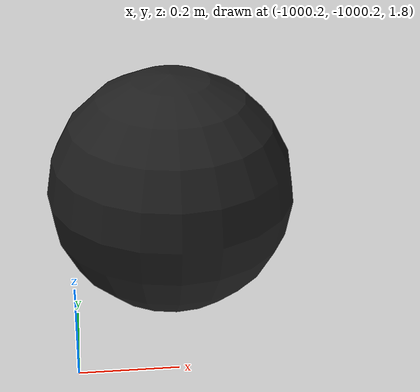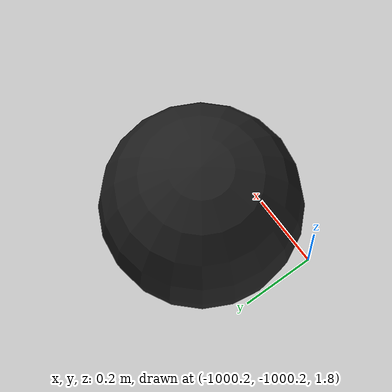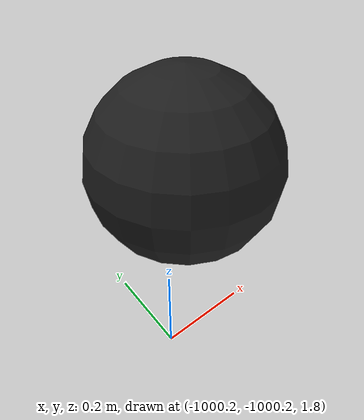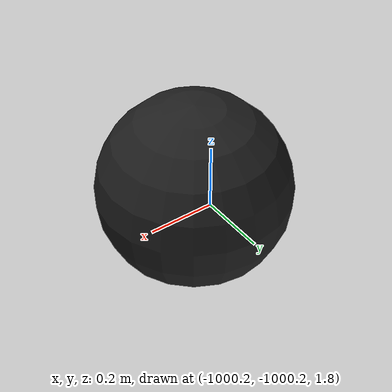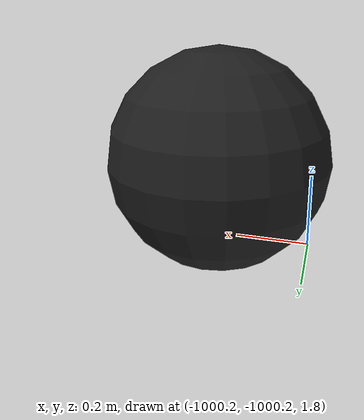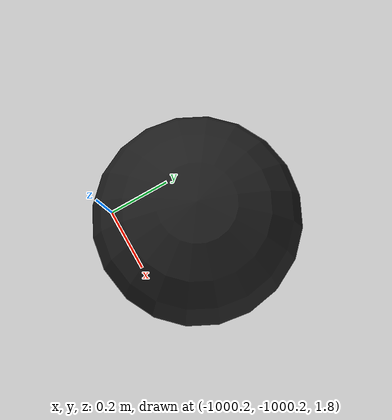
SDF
<?xml version="1.0" ?>
<sdf version="1.5">
  <world name="default">
    <plugin name="mrs_gazebo_static_transform_republisher_plugin" filename="libMrsGazeboCommonResources_StaticTransformRepublisher.so"/>

    <!-- coordinate system {-->
    <spherical_coordinates>
      <surface_model>EARTH_WGS84</surface_model>
      <latitude_deg>47.397743</latitude_deg>
      <longitude_deg>8.545594</longitude_deg>
      <elevation>0.0</elevation>
      <heading_deg>0</heading_deg>
    </spherical_coordinates>

    <!-- physics engine {-->
    <physics name="default_physics" default="0" type="ode">
      <gravity>0 0 -9.8066</gravity>
      <ode>
        <solver>
          <type>quick</type>
          <iters>10</iters>
          <sor>1.3</sor>
          <use_dynamic_moi_rescaling>0</use_dynamic_moi_rescaling>
        </solver>
        <constraints>
          <cfm>0</cfm>
          <erp>0.2</erp>
          <contact_max_correcting_vel>1000</contact_max_correcting_vel>
          <contact_surface_layer>0.001</contact_surface_layer>
        </constraints>
      </ode>
      <max_step_size>0.004</max_step_size>
      <real_time_factor>1</real_time_factor>
      <real_time_update_rate>250</real_time_update_rate>
      <magnetic_field>6.0e-06 2.3e-05 -4.2e-05</magnetic_field>
    </physics>

    <!-- setup shadows {-->
    <scene>
      <shadows>false</shadows>
      <sky>
        <clouds/>
      </sky>
    </scene>

    <!-- sun {-->

    <light name='sun' type='directional'>
      <pose frame=''>0 0 1000 0.4 0.2 0</pose>
      <diffuse>1 1 1 1</diffuse>
      <specular>0.6 0.6 0.6 1</specular>
      <direction>0.1 0.1 -0.9</direction>
      <attenuation>
        <range>20</range>
        <constant>0.5</constant>
        <linear>0.01</linear>
        <quadratic>0.001</quadratic>
      </attenuation>
      <cast_shadows>1</cast_shadows>
    </light>

    <!-- ground plane {-->
    <model name="ground_plane">
      <static>true</static>
      <link name="link">
        <collision name="collision">
          <pose>0 0 0 0 0 0</pose>
          <geometry>
            <plane>
              <normal>0 0 1</normal>
              <size>250 250</size>
            </plane>
          </geometry>
          <surface>
            <friction>
              <ode>
                <mu>1</mu>
                <mu2>1</mu2>
              </ode>
            </friction>
          </surface>
        </collision>
        <visual name="grass">
          <pose>0 0 0 0 0 0</pose>
          <cast_shadows>false</cast_shadows>
          <geometry>
            <mesh>
              <uri>file://grass_plane/meshes/grass_plane.dae</uri>
            </mesh>
          </geometry>
          <material>
            <script>
              <uri>file://media/materials/scripts/Gazebo.material</uri>
              <name>Gazebo/Grass</name>
            </script>
          </material>
        </visual>
      </link>
    </model>

    <!-- THE VOID (for spawning objects out of camera view) {-->
    <model name='the_void'>
      <static>1</static>
      <link name='link'>
        <pose frame=''>0 0 0.1 0 -0 0</pose>
        <visual name='the_void'>
          <pose frame=''>0 0 2 0 -0 0</pose>
          <geometry>
            <sphere>
              <radius>0.25</radius>
            </sphere>
          </geometry>
          <material>
            <script>
              <uri>file://media/materials/scripts/Gazebo.material</uri>
              <name>Gazebo/Black</name>
            </script>
          </material>
        </visual>
        <self_collide>0</self_collide>
        <enable_wind>0</enable_wind>
        <kinematic>0</kinematic>
      </link>
      <pose frame=''>-1000 -1000 0 0 0 0</pose>
    </model>

    <!-- user camera {-->
    <gui>
      <camera name="camera">
        <pose>-60 -100 30 0 0.4 0.89</pose>
      </camera>
    </gui>

    <!-- GUI frame synchronization {-->
    <plugin name="mrs_gazebo_rviz_cam_synchronizer" filename="libMrsGazeboCommonResources_RvizCameraSynchronizer.so" >
      <target_frame_id>gazebo_user_camera</target_frame_id>
      <world_origin_frame_id>uav1/gps_origin</world_origin_frame_id>
      <frame_to_follow>uav1</frame_to_follow>
    </plugin>

  </world>
</sdf>
